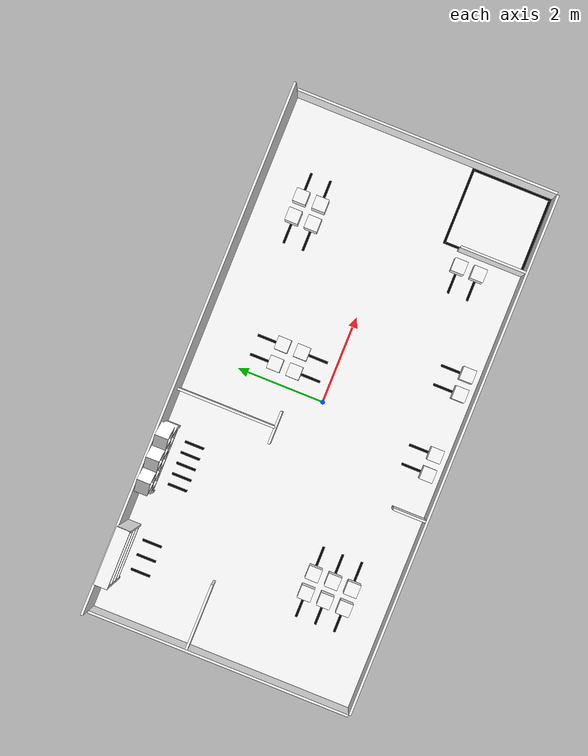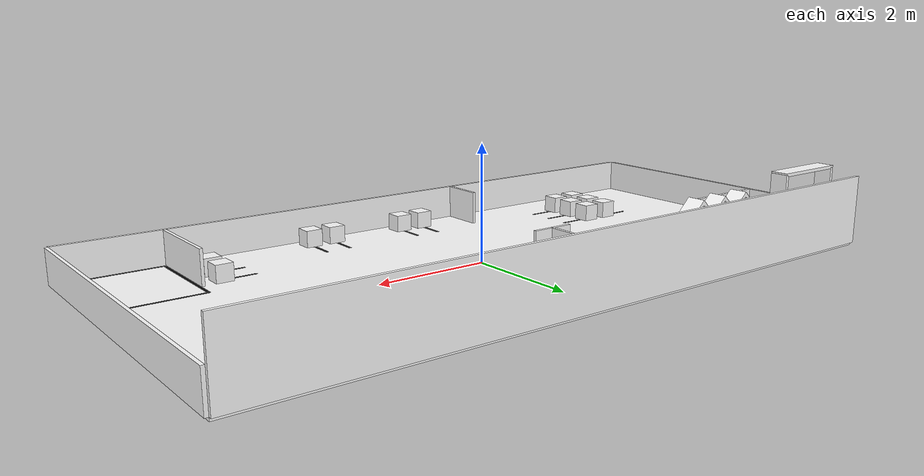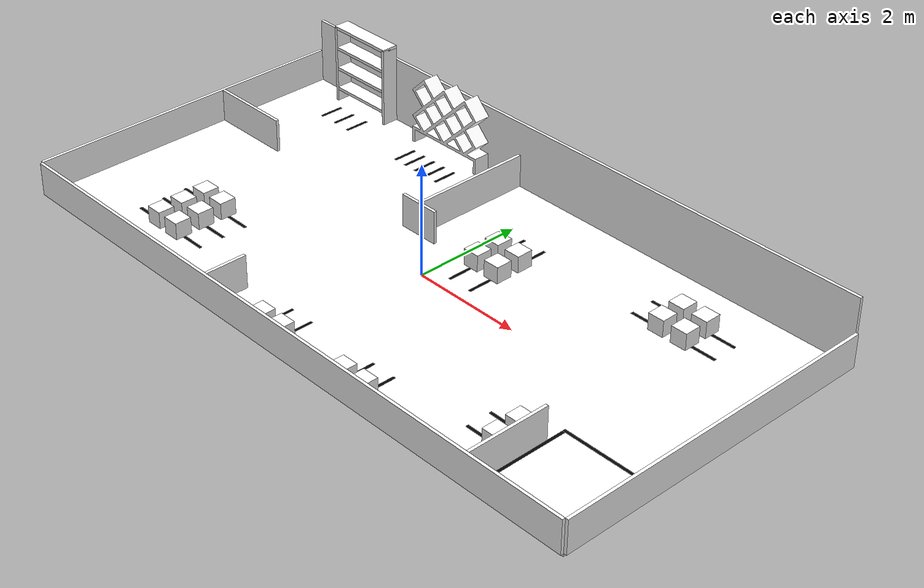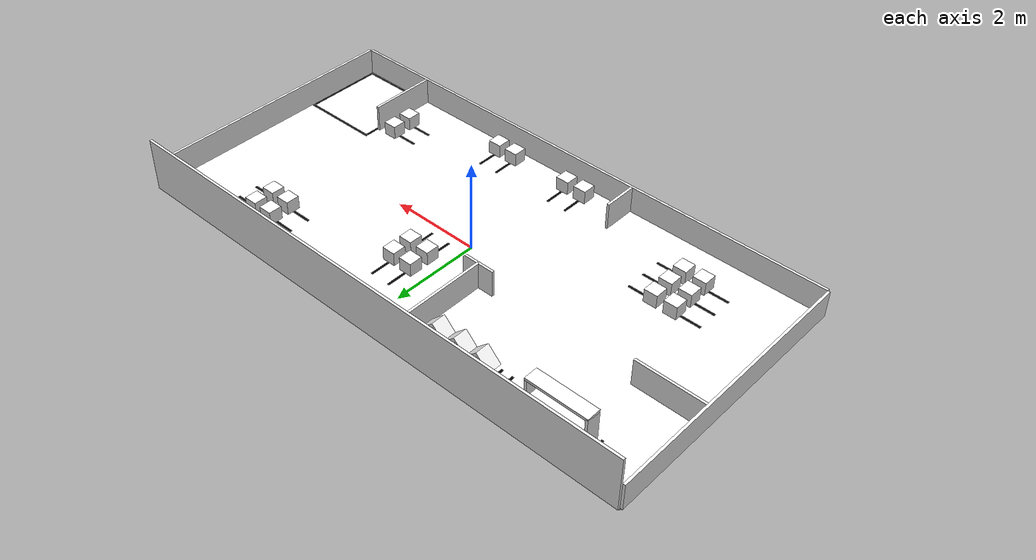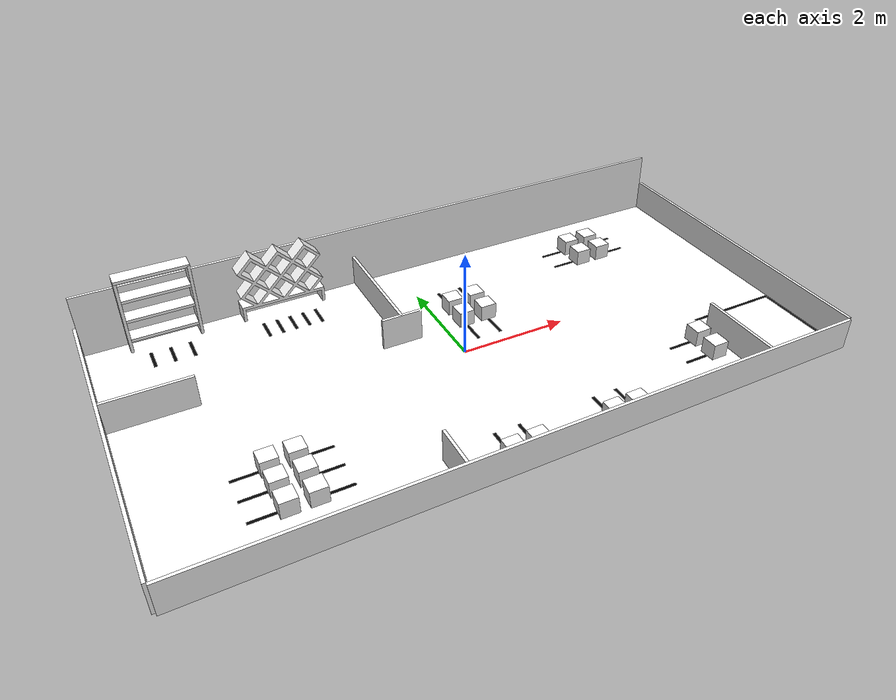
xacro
<?xml version="1.0"?>
<robot name="mecabot_gz" xmlns:xacro="http://www.ros.org/wiki/xacro">

  <!--
    Not made to be maintainable :)
    all values are 3x the actual map, and mass is just approximation
  -->

  <xacro:include filename="lks_arena.include.xacro"/>

  <link name="base">
    <visual>
      <origin xyz="0 0 0" rpy="0 0 0"/>
      <geometry>
        <box size="12 6 ${plank_thick}"/>
      </geometry>
      <material name="white">
        <color rgba="1 1 1 1"/>
      </material>
    </visual>

    <collision>
      <origin xyz="0 0 0" rpy="0 0 0"/>
      <geometry>
        <box size="12 6 ${plank_thick}"/>
      </geometry>
    </collision>

    <xacro:inertial_box mass="24" x="12" y="6" z="${plank_thick}">
      <origin xyz="0 0 0"/>
    </xacro:inertial_box>

  </link>

  <gazebo reference="base">
      <material>Gazebo/White</material>
    </gazebo>

  <!-- WALL LINKS -->
  <xacro:wall_link name="wall_2000_0" length="6" mass="6"/>
  <xacro:wall_link name="wall_2000_1" length="6" mass="6"/>
  <xacro:wall_link name="wall_4000_0" length="12" mass="12"/>
  <xacro:make_plank name="wall_4000_1" length="12" width="1.2" mass="12"/>
  <xacro:wall_link name="wall_500_0" length="1.5" mass="1.5"/>
  <xacro:wall_link name="wall_500_1" length="1.5" mass="1.5"/>
  <xacro:wall_link name="wall_250_0" length="0.75" mass="0.75"/>
  <xacro:wall_link name="wall_250_1" length="0.75" mass="0.75"/>
  <xacro:wall_link name="wall_750_0" length="2.25" mass="2.25"/>

  <link name="home_line_0">
    <visual>
      <origin xyz="0 0 0"/>
      <geometry>
        <box size="1.8 0.054 0.0001"/>
      </geometry>
      <material name="black">
        <color rgba="0.01 0.01 0.01 1"/>
      </material>
    </visual>
    <collision>
      <origin xyz="0 0 -0.1"/>
      <geometry>
        <box size="1.8 0.054 0.0001"/>
      </geometry>
    </collision>
    <xacro:inertial_box mass="0.01" x="0.75" y="0.054" z="0.01">
      <origin xyz="0 0 0"/>
    </xacro:inertial_box>
  </link>

  <link name="home_line_1">
    <visual>
      <origin xyz="0 0 0"/>
      <geometry>
        <box size="1.8 0.054 0.0001"/>
      </geometry>
      <material name="black">
        <color rgba="0.01 0.01 0.01 1"/>
      </material>
    </visual>
    <collision>
      <origin xyz="0 0 -0.1"/>
      <geometry>
        <box size="1.8 0.054 0.0001"/>
      </geometry>
    </collision>
    <xacro:inertial_box mass="0.01" x="0.75" y="0.054" z="0.01">
      <origin xyz="0 0 0"/>
    </xacro:inertial_box>
  </link>

  <link name="home_line_2">
    <visual>
      <origin xyz="0 0 0"/>
      <geometry>
        <box size="1.8 0.054 0.0001"/>
      </geometry>
      <material name="black">
        <color rgba="0.01 0.01 0.01 1"/>
      </material>
    </visual>
    <collision>
      <origin xyz="0 0 -0.1"/>
      <geometry>
        <box size="1.8 0.054 0.0001"/>
      </geometry>
    </collision>
    <xacro:inertial_box mass="0.01" x="0.75" y="0.054" z="0.01">
      <origin xyz="0 0 0"/>
    </xacro:inertial_box>
  </link>

  <link name="home_line_3">
    <visual>
      <origin xyz="0 0 0"/>
      <geometry>
        <box size="1.8 0.054 0.0001"/>
      </geometry>
      <material name="black">
        <color rgba="0.01 0.01 0.01 1"/>
      </material>
    </visual>
    <collision>
      <origin xyz="0 0 -0.1"/>
      <geometry>
        <box size="1.8 0.054 0.0001"/>
      </geometry>
    </collision>
    <xacro:inertial_box mass="0.01" x="0.75" y="0.054" z="0.01">
      <origin xyz="0 0 0"/>
    </xacro:inertial_box>
  </link>

  <!-- WALL JOINTS -->
  <xacro:wall_joint wall="wall_2000_0">
    <origin xyz="${plank_thick / 2 + 6} 0 ${wall_height / 2 + 0.027}" rpy="0 0 ${pi / 2}"/>
  </xacro:wall_joint>

  <xacro:wall_joint wall="wall_2000_1">
    <origin xyz="${-plank_thick / 2 - 6} 0 ${wall_height / 2 + 0.027}" rpy="0 0 ${pi / 2}"/>
  </xacro:wall_joint>

  <xacro:wall_joint wall="wall_4000_0">
    <origin xyz="0 ${-plank_thick / 2 - 3} ${wall_height / 2 + 0.027}"/>
  </xacro:wall_joint>

  <xacro:wall_joint wall="wall_4000_1">
    <origin xyz="0 ${plank_thick / 2 + 3} ${1.2 / 2 + 0.027}"/>
  </xacro:wall_joint>

  <xacro:wall_joint wall="wall_500_0">
    <origin xyz="${6 - 1.8} ${-3 + 0.75} ${wall_height / 2 + 0.027}" rpy="0 0 ${pi / 2}"/>
  </xacro:wall_joint>

  <xacro:wall_joint wall="wall_500_1">
    <origin xyz="${-6 + 0.75} 0.75 ${wall_height / 2 + 0.027}"/>
  </xacro:wall_joint>

  <xacro:wall_joint wall="wall_250_0">
    <origin xyz="${-6 + 4.446} ${-3 + 0.375} ${wall_height / 2 + 0.027}" rpy="0 0 ${pi / 2}"/>
  </xacro:wall_joint>

  <xacro:wall_joint wall="wall_250_1">
    <origin xyz="${-6 + 5.121} 0.75 ${wall_height / 2 + 0.027}"/>
  </xacro:wall_joint>

  <xacro:wall_joint wall="wall_750_0">
    <origin xyz="${-6 + 5.121} ${0.75 + 1.125} ${wall_height / 2 + 0.027}" rpy="0 0 ${pi / 2}"/>
  </xacro:wall_joint>

  <xacro:obj_to_obj name0="wall_500_0" name1="home_line_0">
    <origin xyz="${0.1 + 0.054} -${0.054} -0.3"/>
  </xacro:obj_to_obj>

  <xacro:obj_to_obj name0="wall_500_0" name1="home_line_1">
    <origin xyz="${0.1 + 0.054} -${1.8 - 0.027} -0.3"/>
  </xacro:obj_to_obj>

  <xacro:obj_to_obj name0="wall_500_0" name1="home_line_2">
    <origin xyz="${0.1 + 0.054 - 0.9 + 0.027} -${0.9 + 0.027} -0.3" rpy="0 0 ${pi / 2}"/>
  </xacro:obj_to_obj>

  <xacro:obj_to_obj name0="wall_500_0" name1="home_line_3">
    <origin xyz="${0.1 + 0.054 - 0.9 + 0.027 + 1.8} -${0.9 + 0.027} -0.3" rpy="0 0 ${pi / 2}"/>
  </xacro:obj_to_obj>

  <gazebo reference="home_line_0">
    <material>Gazebo/Black</material>
  </gazebo>

  <gazebo reference="home_line_1">
    <material>Gazebo/Black</material>
  </gazebo>

  <gazebo reference="home_line_2">
    <material>Gazebo/Black</material>
  </gazebo>

  <gazebo reference="home_line_3">
    <material>Gazebo/Black</material>
  </gazebo>

  <!-- CONTAINER BOXES LINKS -->
  <xacro:cont_box name="cont_box1"/>
  <xacro:cont_box name="cont_box2"/>
  <xacro:cont_box name="cont_box3"/>
  <xacro:cont_box name="cont_box4"/>
  <xacro:cont_box name="cont_box5"/>
  <xacro:cont_box name="cont_box6"/>
  <xacro:cont_box name="cont_box7"/>
  <xacro:cont_box name="cont_box8"/>
  <xacro:cont_box name="cont_box9"/>
  <xacro:cont_box name="cont_box10"/>
  <xacro:cont_box name="cont_box11"/>
  <xacro:cont_box name="cont_box12"/>
  <xacro:cont_box name="cont_box13"/>
  <xacro:cont_box name="cont_box14"/>
  <xacro:cont_box name="cont_box15"/>
  <xacro:cont_box name="cont_box16"/>
  <xacro:cont_box name="cont_box17"/>
  <xacro:cont_box name="cont_box18"/>
  <xacro:cont_box name="cont_box19"/>
  <xacro:cont_box name="cont_box20"/>

  <!-- CONTAINER BOXES CLUSTERS -->
  <xacro:cont_box_4
    name0="cont_box1"
    name1="cont_box2"
    name2="cont_box3"
    name3="cont_box4"
    x="1.875"
    y="0.75"
  />

  <xacro:cont_box_4
    name0="cont_box5"
    name1="cont_box6"
    name2="cont_box7"
    name3="cont_box8"
    x="${1.875 + 2.379 + 0.6 + 0.15}"
    y="1.575"
  />

  <xacro:cont_box_2
    name0="cont_box9"
    name1="cont_box10"
    x="${1.8 + 0.054 + 2.271}"
    y="${5.85 - 0.3}"
  />

  <xacro:cont_box_2
    name0="cont_box11"
    name1="cont_box12"
    x="${1.8 + 0.054 + 2.271 + 0.6 + 0.15 + 1.125}"
    y="${5.85 - 0.3}"
  />

  <xacro:cont_box_4
    name0="cont_box13"
    name1="cont_box14"
    name2="cont_box15"
    name3="cont_box16"
    x="${1.8 + 0.054 + 2.271 + 0.6 * 2 + 0.15 * 2 + 1.125 + 0.75 + 0.054 + 1.821}"
    y="${6 - 0.75 - 0.6 - 0.15}"
  />

  <xacro:cont_box_2
    name0="cont_box17"
    name1="cont_box18"
    x="${1.8 + 0.054 + 2.271 + 0.6 * 2 + 0.15 * 2 + 1.125 + 0.75 + 0.054 + 1.821}"
    y="${6 - 0.75 - 0.9 - 0.15 * 2}"
  />

  <xacro:wall_joint wall="cont_box19">
    <origin xyz="${6 - (1.8 + 0.054 + 0.15) - 0.15} ${3 - (6 - 0.75 - 0.6 - 0.15) - 0.3 - 0.3} ${0.15 + 0.027}"/>
  </xacro:wall_joint>

  <xacro:wall_joint wall="cont_box20">
    <origin xyz="${6 - (1.8 + 0.054 + 0.15) - 0.15} ${3 - (6 - 0.75 - 0.6 - 0.15) - 0.15} ${0.15 + 0.027}"/>
  </xacro:wall_joint>

  <!-- CONTAINER BOX LINES JOINTS -->
  <xacro:line_to_obj obj="cont_box1" line="box1_line">
    <origin xyz="${0.225 + 0.15} 0 -0.15" rpy="0 0 0"/>
  </xacro:line_to_obj>

  <xacro:line_to_obj obj="cont_box2" line="box2_line">
    <origin xyz="${0.225 + 0.15} 0 -0.15" rpy="0 0 0"/>
  </xacro:line_to_obj>

  <xacro:line_to_obj obj="cont_box3" line="box3_line">
    <origin xyz="-${0.225 + 0.15} 0 -0.15" rpy="0 0 0"/>
  </xacro:line_to_obj>

  <xacro:line_to_obj obj="cont_box4" line="box4_line">
    <origin xyz="-${0.225 + 0.15} 0 -0.15" rpy="0 0 0"/>
  </xacro:line_to_obj>

  <xacro:line_to_obj obj="cont_box5" line="box5_line">
    <origin xyz="0 -${0.225 + 0.15} -0.15" rpy="0 0 ${pi / 2}"/>
  </xacro:line_to_obj>

  <xacro:line_to_obj obj="cont_box6" line="box6_line">
    <origin xyz="0 ${0.225 + 0.15} -0.15" rpy="0 0 ${pi / 2}"/>
  </xacro:line_to_obj>

  <xacro:line_to_obj obj="cont_box7" line="box7_line">
    <origin xyz="0 ${0.225 + 0.15} -0.15" rpy="0 0 ${pi / 2}"/>
  </xacro:line_to_obj>

  <xacro:line_to_obj obj="cont_box8" line="box8_line">
    <origin xyz="0 -${0.225 + 0.15} -0.15" rpy="0 0 ${pi / 2}"/>
  </xacro:line_to_obj>

  <xacro:line_to_obj obj="cont_box9" line="box9_line">
    <origin xyz="0 ${0.225 + 0.15} -0.15" rpy="0 0 ${pi / 2}"/>
  </xacro:line_to_obj>

  <xacro:line_to_obj obj="cont_box10" line="box10_line">
    <origin xyz="0 ${0.225 + 0.15} -0.15" rpy="0 0 ${pi / 2}"/>
  </xacro:line_to_obj>

  <xacro:line_to_obj obj="cont_box11" line="box11_line">
    <origin xyz="0 ${0.225 + 0.15} -0.15" rpy="0 0 ${pi / 2}"/>
  </xacro:line_to_obj>

  <xacro:line_to_obj obj="cont_box12" line="box12_line">
    <origin xyz="0 ${0.225 + 0.15} -0.15" rpy="0 0 ${pi / 2}"/>
  </xacro:line_to_obj>

  <xacro:line_to_obj obj="cont_box13" line="box13_line">
    <origin xyz="${0.225 + 0.15} 0 -0.15" rpy="0 0 0"/>
  </xacro:line_to_obj>

  <xacro:line_to_obj obj="cont_box14" line="box14_line">
    <origin xyz="${0.225 + 0.15} 0 -0.15" rpy="0 0 0"/>
  </xacro:line_to_obj>

  <xacro:line_to_obj obj="cont_box15" line="box15_line">
    <origin xyz="-${0.225 + 0.15} 0 -0.15" rpy="0 0 0"/>
  </xacro:line_to_obj>

  <xacro:line_to_obj obj="cont_box16" line="box16_line">
    <origin xyz="-${0.225 + 0.15} 0 -0.15" rpy="0 0 0"/>
  </xacro:line_to_obj>

  <xacro:line_to_obj obj="cont_box17" line="box17_line">
    <origin xyz="${0.225 + 0.15} 0 -0.15" rpy="0 0 0"/>
  </xacro:line_to_obj>

  <xacro:line_to_obj obj="cont_box18" line="box18_line">
    <origin xyz="-${0.225 + 0.15} 0 -0.15" rpy="0 0 0"/>
  </xacro:line_to_obj>

  <xacro:line_to_obj obj="cont_box19" line="box19_line">
    <origin xyz="-${0.225 + 0.15} 0 -0.15" rpy="0 0 0"/>
  </xacro:line_to_obj>

  <xacro:line_to_obj obj="cont_box20" line="box20_line">
    <origin xyz="-${0.225 + 0.15} 0 -0.15" rpy="0 0 0"/>
  </xacro:line_to_obj>

  <!-- BOX RACK LINKS -->
  <xacro:make_plank name="box_rack_plank_0" width="1.443" length="0.3" mass="0.3"/>
  <xacro:make_plank name="box_rack_plank_1" width="1.443" length="0.3" mass="0.3"/>
  <xacro:make_plank name="box_rack_plank_2" width="1.293" length="0.3" mass="0.3"/>
  <xacro:make_plank name="box_rack_plank_3" width="1.185" length="0.3" mass="0.3"/>
  <xacro:make_plank name="box_rack_plank_4" width="1.185" length="0.3" mass="0.3"/>
  <xacro:make_plank name="box_rack_plank_5" width="1.185" length="0.3" mass="0.3"/>
  <xacro:make_line name="box_rack_line_0"/>
  <xacro:make_line name="box_rack_line_1"/>
  <xacro:make_line name="box_rack_line_2"/>

  <!-- BOX RACK JOINTS -->
  <xacro:obj_to_obj name0="box_rack_plank_0" name1="box_rack_plank_1">
    <origin xyz="0 ${1.185 + 0.054} 0"/>
  </xacro:obj_to_obj>

  <xacro:obj_to_obj name0="box_rack_plank_1" name1="box_rack_plank_2">
    <origin xyz="0 -0.6195 ${1.443 / 2}" rpy="${pi / 2} 0 0"/>
  </xacro:obj_to_obj>

  <xacro:obj_to_obj name0="box_rack_plank_2" name1="box_rack_plank_3">
    <origin xyz="0 -${0.345 + 0.054} 0" rpy="0 0 0"/>
  </xacro:obj_to_obj>

  <xacro:obj_to_obj name0="box_rack_plank_3" name1="box_rack_plank_4">
    <origin xyz="0 -${0.345 + 0.054} 0" rpy="0 0 0"/>
  </xacro:obj_to_obj>

  <xacro:obj_to_obj name0="box_rack_plank_4" name1="box_rack_plank_5">
    <origin xyz="0 -${0.345 + 0.054} 0" rpy="0 0 0"/>
  </xacro:obj_to_obj>

  <xacro:obj_to_obj name0="box_rack_plank_5" name1="box_rack_line_0">
    <origin xyz="${-0.225 - 0.3} -${0.3 - 0.054} 0" rpy="${pi / 2} 0 0"/>
  </xacro:obj_to_obj>

  <xacro:obj_to_obj name0="box_rack_plank_5" name1="box_rack_line_1">
    <origin xyz="${-0.225 - 0.3} -${0.3 - 0.054} 0.345" rpy="${pi / 2} 0 0"/>
  </xacro:obj_to_obj>

  <xacro:obj_to_obj name0="box_rack_plank_5" name1="box_rack_line_2">
    <origin xyz="${-0.225 - 0.3} -${0.3 - 0.054} -0.345" rpy="${pi / 2} 0 0"/>
  </xacro:obj_to_obj>

  <xacro:wall_joint wall="box_rack_plank_0">
    <origin xyz="${-6 - 0.027 + 2.043} ${3 - 0.15} 0.7485" rpy="0 0 ${pi / 2}"/>
  </xacro:wall_joint>

  <!-- DRINK RACK LINKS -->
  <link name="drink_rack">
      <visual>
        <origin xyz="0 0 0"/>
        <geometry>
          <mesh
            filename="file://$(find mecabot_gz)/world_desc/mesh/drink_rack.stl"
            scale="1.5 1.5 1.5"
          />
        </geometry>
        <material name="white">
          <color rgba="1 1 1 1"/>
        </material>
      </visual>

      <collision>
        <origin xyz="0 0 0"/>
        <geometry>
          <mesh
            filename="file://$(find mecabot_gz)/world_desc/mesh/drink_rack.stl"
            scale="1.5 1.5 1.5"
          />
        </geometry>
      </collision>

      <xacro:inertial_box mass="1.5" x="1.6" y="0.3" z="1">
        <origin xyz="0 0 0"/>
      </xacro:inertial_box>

  </link>
  <gazebo reference="drink_rack">
    <material>Gazebo/White</material>
  </gazebo>
  <xacro:make_line name="drink_rack_line_0"/>
  <xacro:make_line name="drink_rack_line_1"/>
  <xacro:make_line name="drink_rack_line_2"/>
  <xacro:make_line name="drink_rack_line_3"/>
  <xacro:make_line name="drink_rack_line_4"/>

  <!-- DRINK RACK JOINTS -->
  <xacro:wall_joint wall="drink_rack">
    <origin xyz="${-6 + 0.789 + 0.002 + 2.793} ${3 - 0.108 - 0.027} 0.027" rpy="0 0 0"/>
  </xacro:wall_joint>

  <xacro:obj_to_obj name0="drink_rack" name1="drink_rack_line_0">
    <origin xyz="0 ${-0.225 * 2 - 0.15} 0" rpy="0 0 ${pi / 2}"/>
  </xacro:obj_to_obj>

  <xacro:obj_to_obj name0="drink_rack" name1="drink_rack_line_1">
    <origin xyz="0.2502 ${-0.225 * 2 - 0.15} 0" rpy="0 0 ${pi / 2}"/>
  </xacro:obj_to_obj>

  <xacro:obj_to_obj name0="drink_rack" name1="drink_rack_line_2">
    <origin xyz="${0.2502 * 2} ${-0.225 * 2 - 0.15} 0" rpy="0 0 ${pi / 2}"/>
  </xacro:obj_to_obj>

  <xacro:obj_to_obj name0="drink_rack" name1="drink_rack_line_3">
    <origin xyz="-0.2502 ${-0.225 * 2 - 0.15} 0" rpy="0 0 ${pi / 2}"/>
  </xacro:obj_to_obj>

  <xacro:obj_to_obj name0="drink_rack" name1="drink_rack_line_4">
    <origin xyz="-${0.2502 * 2} ${-0.225 * 2 - 0.15} 0" rpy="0 0 ${pi / 2}"/>
  </xacro:obj_to_obj>

</robot>

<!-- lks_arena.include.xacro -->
<robot name="mecabot_gz" xmlns:xacro="http://www.ros.org/wiki/xacro">

  <xacro:property name="plank_thick" value="0.054"/>
  <xacro:property name="wall_height" value="0.6"/>

  <!-- BOX INERTIA MACRO -->
  <xacro:macro name="inertial_box" params="mass x y z *origin">
    <inertial>
      <xacro:insert_block name="origin"/>
      <mass value="${mass}" />
      <inertia ixx="${(1/12) * mass * (y*y+z*z)}" ixy="0.0" ixz="0.0"
              iyy="${(1/12) * mass * (x*x+z*z)}" iyz="0.0"
              izz="${(1/12) * mass * (x*x+y*y)}" />
    </inertial>
  </xacro:macro>

  <!-- CYLINDER INERTIA MACRO -->
  <xacro:macro name="inertial_cylinder" params="mass length radius *origin">
    <inertial>
      <xacro:insert_block name="origin"/>
      <mass value="${mass}" />
      <inertia ixx="${(1/12) * mass * (3*radius*radius + length*length)}" ixy="0.0" ixz="0.0"
              iyy="${(1/12) * mass * (3*radius*radius + length*length)}" iyz="0.0"
              izz="${(1/2) * mass * (radius*radius)}" />
    </inertial>
  </xacro:macro>

  <!-- PLANK GENERATION -->
  <xacro:macro name="make_plank" params="name length width mass">
    <link name="${name}">

      <visual>
        <origin xyz="0 0 0"/>
        <geometry>
          <box size="${length} ${plank_thick} ${width}"/>
        </geometry>
        <material name="white">
          <color rgba="1 1 1 1"/>
        </material>
      </visual>

      <collision>
        <origin xyz="0 0 0"/>
        <geometry>
          <box size="${length} ${plank_thick} ${width}"/>
        </geometry>
      </collision>

      <xacro:inertial_box mass="${mass}" x="${length}" y="${plank_thick}" z="${width}">
        <origin xyz="0 0 0"/>
      </xacro:inertial_box>

    </link>
    <gazebo reference="${name}">
      <material>Gazebo/White</material>
    </gazebo>
  </xacro:macro>

  <!-- OBJECT-OBJECT JOINT GENERATION -->
  <xacro:macro name="obj_to_obj" params="name0 name1 *origin">
    <joint name="${name0}_${name1}_joint" type="fixed">

      <xacro:insert_block name="origin"/>
      <parent link="${name0}"/>
      <child link="${name1}"/>

    </joint>
  </xacro:macro>

  <!-- WALL GENERATION -->
  <xacro:macro name="wall_link" params="name length mass">
    <link name="${name}">

      <visual>
        <origin xyz="0 0 0"/>
        <geometry>
          <box size="${length} ${plank_thick} ${wall_height}"/>
        </geometry>
        <material name="white">
          <color rgba="1 1 1 1"/>
        </material>
      </visual>

      <collision>
        <origin xyz="0 0 0"/>
        <geometry>
          <box size="${length} ${plank_thick} ${wall_height}"/>
        </geometry>
      </collision>

      <xacro:inertial_box mass="${mass}" x="${length}" y="${plank_thick}" z="${wall_height}">
        <origin xyz="0 0 0"/>
      </xacro:inertial_box>

    </link>
    <gazebo reference="${name}">
      <material>Gazebo/White</material>
    </gazebo>
  </xacro:macro>

  <!-- CONTAINER BOX GENERATION -->
  <xacro:macro name="cont_box" params="name">
    <link name="${name}">

      <visual>
        <origin xyz="0 0 0"/>
        <geometry>
          <box size="0.3 0.3 0.3"/>
        </geometry>
        <material name="white">
          <color rgba="1 1 1 1"/>
        </material>
      </visual>

      <collision>
        <origin xyz="0 0 0"/>
        <geometry>
          <box size="0.3 0.3 0.3"/>
        </geometry>
      </collision>

      <xacro:inertial_box mass="0.3" x="0.3" y="0.3" z="0.3">
        <origin xyz="0 0 0"/>
      </xacro:inertial_box>

    </link>
    <gazebo reference="${name}">
      <material>Gazebo/White</material>
    </gazebo>
  </xacro:macro>

  <!-- OBJECT-BASE JOINT GENERATION -->
  <xacro:macro name="wall_joint" params="wall *origin">
    <joint name="base_${wall}_joint" type="fixed">

      <xacro:insert_block name="origin"/>
      <parent link="base"/>
      <child link="${wall}"/>

    </joint>
  </xacro:macro>

  <!-- 4 CONTAINER BOX CLUSTER GENERATION -->
  <xacro:macro name="cont_box_4" params="name0 name1 name2 name3 x y">

    <xacro:wall_joint wall="${name0}">
      <origin xyz="${6 - x - 0.15} ${3 - y - 0.3 - 0.3} ${0.15 + 0.027}"/>
    </xacro:wall_joint>

    <xacro:wall_joint wall="${name1}">
      <origin xyz="${6 - x - 0.15} ${3 - y - 0.15} ${0.15 + 0.027}"/>
    </xacro:wall_joint>

    <xacro:wall_joint wall="${name2}">
      <origin xyz="${6 - x - 0.6} ${3 - y - 0.15} ${0.15 + 0.027}"/>
    </xacro:wall_joint>

    <xacro:wall_joint wall="${name3}">
      <origin xyz="${6 - x - 0.6} ${3 - y - 0.3 - 0.3} ${0.15 + 0.027}"/>
    </xacro:wall_joint>

  </xacro:macro>

  <!-- 2 CONTAINER BOX CLUSTER GENERATION -->
  <xacro:macro name="cont_box_2" params="name0 name1 x y">

    <xacro:wall_joint wall="${name0}">
      <origin xyz="${6 - x - 0.15} ${3 - y - 0.15} ${0.15 + 0.027}"/>
    </xacro:wall_joint>

    <xacro:wall_joint wall="${name1}">
      <origin xyz="${6 - x - 0.6} ${3 - y - 0.15} ${0.15 + 0.027}"/>
    </xacro:wall_joint>

  </xacro:macro>

  <!-- LINE GENERATION -->
  <xacro:macro name="make_line" params="name">
    <link name="${name}">

      <visual>
        <origin xyz="0 0 0"/>
        <geometry>
          <box size="0.45 0.054 0.0001"/>
        </geometry>
        <material name="black">
          <color rgba="0.01 0.01 0.01 1"/>
        </material>
      </visual>

      <collision>
        <origin xyz="0 0 0"/>
        <geometry>
          <box size="0.45 0.054 0.0001"/>
        </geometry>
      </collision>

      <xacro:inertial_box mass="0.01" x="0.75" y="0.054" z="0.01">
        <origin xyz="0 0 0"/>
      </xacro:inertial_box>

    </link>
  </xacro:macro>

  <!-- OBJECT-LINE JOINT LINK GENERATION -->
  <xacro:macro name="line_to_obj" params="obj line *origin">

    <xacro:make_line name="${line}"/>
    <joint name="${obj}_${line}_joint" type="fixed">

      <xacro:insert_block name="origin"/>
      <parent link="${obj}"/>
      <child link="${line}"/>

    </joint>
    <gazebo reference="${line}">
      <material>Gazebo/Black</material>
    </gazebo>
  </xacro:macro>

</robot>
